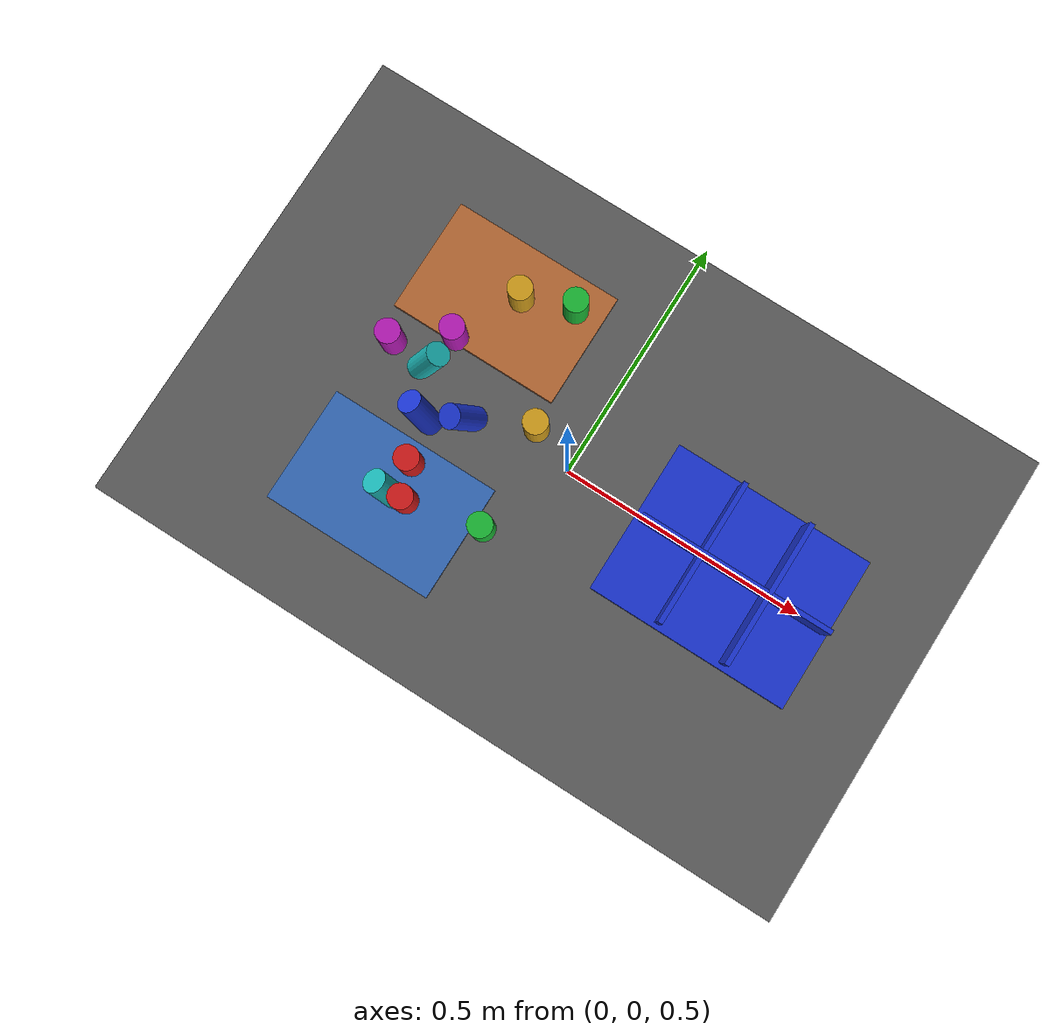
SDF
<?xml version="1.0" ?>
<sdf version="1.9">
  <!-- Standalone M1B scene.  The controller-backed Panda is spawned by the
       existing launch path; this file never alters the frozen M1A cube world. -->
  <world name="industrial_cylinder_v1">
    <physics name="bullet" type="bullet"><max_step_size>0.001</max_step_size><real_time_factor>1.0</real_time_factor></physics>
    <plugin name="gz::sim::systems::Physics" filename="gz-sim-physics-system"><engine><filename>gz-physics-bullet-featherstone-plugin</filename></engine></plugin>
    <plugin name="gz::sim::systems::UserCommands" filename="gz-sim-user-commands-system"/>
    <plugin name="gz::sim::systems::SceneBroadcaster" filename="gz-sim-scene-broadcaster-system"/>
    <plugin name="gz::sim::systems::Sensors" filename="gz-sim-sensors-system"><render_engine>ogre2</render_engine></plugin>
    <gravity>0 0 -9.81</gravity>
    <light type="directional" name="industrial_light"><pose>0 0 5 0 0 0</pose><direction>-0.3 0.2 -0.9</direction><diffuse>0.9 0.9 0.9 1</diffuse></light>
    <model name="industrial_work_table"><static>true</static><link name="link"><pose>0 0 0.4 0 0 0</pose><collision name="collision"><geometry><box><size>1.5 1.0 0.1</size></box></geometry></collision><visual name="visual"><geometry><box><size>1.5 1.0 0.1</size></box></geometry><material><diffuse>0.35 0.35 0.35 1</diffuse></material></visual></link></model>
    <model name="camera_fixture"><static>true</static><link name="camera_rgbd"><pose>-0.80 -0.80 1.40 0 0.77 0.93</pose><sensor name="front_rgbd" type="rgbd_camera"><always_on>1</always_on><update_rate>15</update_rate><topic>/xh/camera/rgbd</topic><camera><horizontal_fov>1.047</horizontal_fov><image><width>640</width><height>480</height><format>R8G8B8</format></image><clip><near>0.1</near><far>4.0</far></clip></camera></sensor></link></model>
    <model name="incoming_zone_a"><static>true</static><link name="link"><pose>-0.28 -0.22 0.455 0 0 0</pose><visual name="visual"><geometry><box><size>0.36 0.24 0.01</size></box></geometry><material><diffuse>0.2 0.4 0.7 1</diffuse></material></visual></link></model>
    <model name="incoming_zone_b"><static>true</static><link name="link"><pose>-0.28 0.22 0.455 0 0 0</pose><visual name="visual"><geometry><box><size>0.36 0.24 0.01</size></box></geometry><material><diffuse>0.7 0.4 0.2 1</diffuse></material></visual></link></model>
    <!-- M1B_RANDOM_PARTS_BEGIN -->
    <model name="cylinder_01"><pose>-0.2316 -0.2067 0.5000 0.0000 0.0000 -2.5538</pose><link name="link"><inertial><mass>0.06</mass></inertial><collision name="collision"><geometry><cylinder><radius>0.025</radius><length>0.09</length></cylinder></geometry></collision><visual name="visual"><geometry><cylinder><radius>0.025</radius><length>0.09</length></cylinder></geometry><material><diffuse>0.800 0.100 0.100 1</diffuse><specular>0.15 0.15 0.15 1</specular></material></visual></link></model>
    <model name="cylinder_02"><pose>-0.1558 0.2765 0.5000 3.1416 0.0000 -1.7944</pose><link name="link"><inertial><mass>0.06</mass></inertial><collision name="collision"><geometry><cylinder><radius>0.025</radius><length>0.09</length></cylinder></geometry></collision><visual name="visual"><geometry><cylinder><radius>0.025</radius><length>0.09</length></cylinder></geometry><material><diffuse>0.100 0.700 0.200 1</diffuse><specular>0.15 0.15 0.15 1</specular></material></visual></link></model>
    <model name="cylinder_03"><pose>-0.2968 -0.0515 0.4800 0.4500 -0.3000 -1.1821</pose><link name="link"><inertial><mass>0.06</mass></inertial><collision name="collision"><geometry><cylinder><radius>0.025</radius><length>0.09</length></cylinder></geometry></collision><visual name="visual"><geometry><cylinder><radius>0.025</radius><length>0.09</length></cylinder></geometry><material><diffuse>0.100 0.200 0.800 1</diffuse><specular>0.15 0.15 0.15 1</specular></material></visual></link></model>
    <model name="cylinder_04"><pose>-0.0965 0.0419 0.5000 0.0000 0.0000 -2.4516</pose><link name="link"><inertial><mass>0.06</mass></inertial><collision name="collision"><geometry><cylinder><radius>0.025</radius><length>0.09</length></cylinder></geometry></collision><visual name="visual"><geometry><cylinder><radius>0.025</radius><length>0.09</length></cylinder></geometry><material><diffuse>0.800 0.600 0.100 1</diffuse><specular>0.15 0.15 0.15 1</specular></material></visual></link></model>
    <model name="cylinder_05"><pose>-0.3237 0.1100 0.5000 3.1416 0.0000 -0.0313</pose><link name="link"><inertial><mass>0.06</mass></inertial><collision name="collision"><geometry><cylinder><radius>0.025</radius><length>0.09</length></cylinder></geometry></collision><visual name="visual"><geometry><cylinder><radius>0.025</radius><length>0.09</length></cylinder></geometry><material><diffuse>0.700 0.100 0.700 1</diffuse><specular>0.15 0.15 0.15 1</specular></material></visual></link></model>
    <model name="cylinder_06"><pose>-0.2700 -0.2087 0.4800 0.4500 -0.3000 -1.0661</pose><link name="link"><inertial><mass>0.06</mass></inertial><collision name="collision"><geometry><cylinder><radius>0.025</radius><length>0.09</length></cylinder></geometry></collision><visual name="visual"><geometry><cylinder><radius>0.025</radius><length>0.09</length></cylinder></geometry><material><diffuse>0.100 0.700 0.700 1</diffuse><specular>0.15 0.15 0.15 1</specular></material></visual></link></model>
    <model name="cylinder_07"><pose>-0.2613 -0.1408 0.5000 0.0000 0.0000 1.1246</pose><link name="link"><inertial><mass>0.06</mass></inertial><collision name="collision"><geometry><cylinder><radius>0.025</radius><length>0.09</length></cylinder></geometry></collision><visual name="visual"><geometry><cylinder><radius>0.025</radius><length>0.09</length></cylinder></geometry><material><diffuse>0.800 0.100 0.100 1</diffuse><specular>0.15 0.15 0.15 1</specular></material></visual></link></model>
    <model name="cylinder_08"><pose>-0.0802 -0.1729 0.5000 3.1416 0.0000 2.1116</pose><link name="link"><inertial><mass>0.06</mass></inertial><collision name="collision"><geometry><cylinder><radius>0.025</radius><length>0.09</length></cylinder></geometry></collision><visual name="visual"><geometry><cylinder><radius>0.025</radius><length>0.09</length></cylinder></geometry><material><diffuse>0.100 0.700 0.200 1</diffuse><specular>0.15 0.15 0.15 1</specular></material></visual></link></model>
    <model name="cylinder_09"><pose>-0.2235 -0.0161 0.4800 0.4500 -0.3000 -0.2827</pose><link name="link"><inertial><mass>0.06</mass></inertial><collision name="collision"><geometry><cylinder><radius>0.025</radius><length>0.09</length></cylinder></geometry></collision><visual name="visual"><geometry><cylinder><radius>0.025</radius><length>0.09</length></cylinder></geometry><material><diffuse>0.100 0.200 0.800 1</diffuse><specular>0.15 0.15 0.15 1</specular></material></visual></link></model>
    <model name="cylinder_10"><pose>-0.2567 0.2403 0.5000 0.0000 0.0000 0.1173</pose><link name="link"><inertial><mass>0.06</mass></inertial><collision name="collision"><geometry><cylinder><radius>0.025</radius><length>0.09</length></cylinder></geometry></collision><visual name="visual"><geometry><cylinder><radius>0.025</radius><length>0.09</length></cylinder></geometry><material><diffuse>0.800 0.600 0.100 1</diffuse><specular>0.15 0.15 0.15 1</specular></material></visual></link></model>
    <model name="cylinder_11"><pose>-0.4210 0.0397 0.5000 3.1416 0.0000 -1.0211</pose><link name="link"><inertial><mass>0.06</mass></inertial><collision name="collision"><geometry><cylinder><radius>0.025</radius><length>0.09</length></cylinder></geometry></collision><visual name="visual"><geometry><cylinder><radius>0.025</radius><length>0.09</length></cylinder></geometry><material><diffuse>0.700 0.100 0.700 1</diffuse><specular>0.15 0.15 0.15 1</specular></material></visual></link></model>
    <model name="cylinder_12"><pose>-0.3391 0.0407 0.4800 0.4500 -0.3000 2.8989</pose><link name="link"><inertial><mass>0.06</mass></inertial><collision name="collision"><geometry><cylinder><radius>0.025</radius><length>0.09</length></cylinder></geometry></collision><visual name="visual"><geometry><cylinder><radius>0.025</radius><length>0.09</length></cylinder></geometry><material><diffuse>0.100 0.700 0.700 1</diffuse><specular>0.15 0.15 0.15 1</specular></material></visual></link></model>
    <!-- M1B_RANDOM_PARTS_END -->
    <model name="blue_partition_bin"><static>true</static><pose>0.36 0 0.45 0 0 0</pose><link name="link"><collision name="floor"><pose>0 0 0.01 0 0 0</pose><geometry><box><size>0.42 0.32 0.02</size></box></geometry></collision><visual name="floor_visual"><pose>0 0 0.01 0 0 0</pose><geometry><box><size>0.42 0.32 0.02</size></box></geometry><material><diffuse>0.1 0.2 0.8 1</diffuse></material></visual><visual name="row_divider"><pose>0 0 0.06 0 0 0</pose><geometry><box><size>0.40 0.01 0.10</size></box></geometry><material><diffuse>0.1 0.2 0.8 1</diffuse></material></visual><visual name="col_divider_a"><pose>-0.07 0 0.06 0 0 0</pose><geometry><box><size>0.01 0.30 0.10</size></box></geometry><material><diffuse>0.1 0.2 0.8 1</diffuse></material></visual><visual name="col_divider_b"><pose>0.07 0 0.06 0 0 0</pose><geometry><box><size>0.01 0.30 0.10</size></box></geometry><material><diffuse>0.1 0.2 0.8 1</diffuse></material></visual></link></model>
    <!-- Reserved only: second table, bin transport corridor, stackable-bin
         collision volume, and second arm mounting namespace. -->
  </world>
</sdf>
